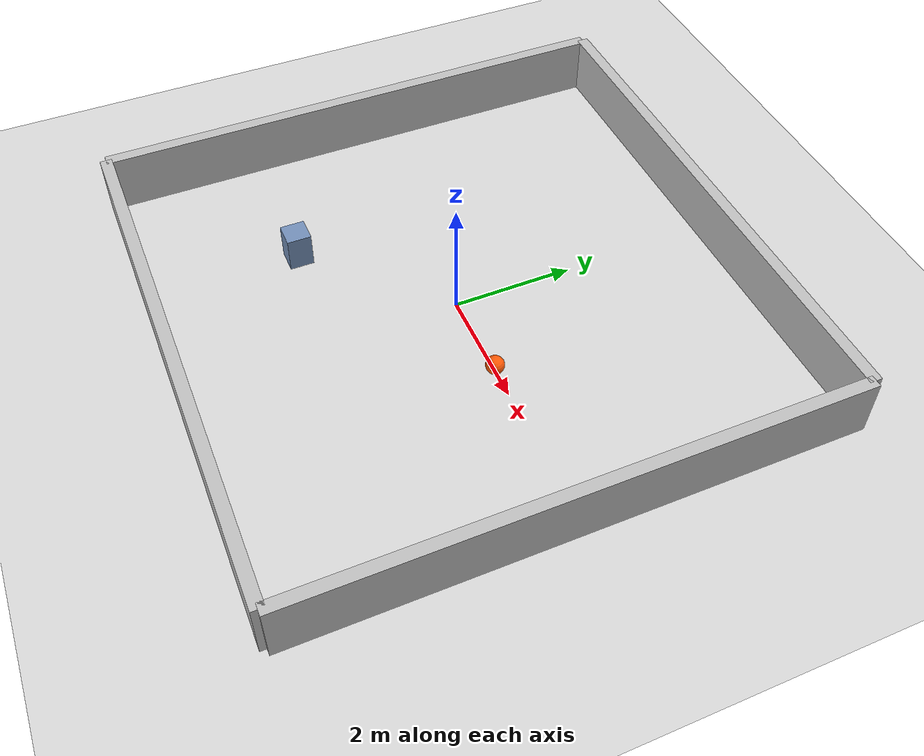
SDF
<?xml version="1.0"?>
<sdf version="1.9">
  <world name="ball_follower_test">
    <gravity>0 0 -9.8</gravity>
    <magnetic_field>6e-06 2.3e-05 -4.2e-05</magnetic_field>
    <atmosphere type="adiabatic"/>

    <plugin filename="gz-sim-physics-system" name="gz::sim::systems::Physics"/>
    <plugin filename="gz-sim-user-commands-system" name="gz::sim::systems::UserCommands"/>
    <plugin filename="gz-sim-scene-broadcaster-system" name="gz::sim::systems::SceneBroadcaster"/>
    <plugin filename="gz-sim-sensors-system" name="gz::sim::systems::Sensors">
      <render_engine>ogre2</render_engine>
    </plugin>

    <light type="directional" name="sun">
      <cast_shadows>true</cast_shadows>
      <pose>0 0 10 0 0 0</pose>
      <diffuse>0.8 0.8 0.8 1</diffuse>
      <specular>0.2 0.2 0.2 1</specular>
      <attenuation>
        <range>1000</range>
        <constant>0.9</constant>
        <linear>0.01</linear>
        <quadratic>0.001</quadratic>
      </attenuation>
      <direction>-0.5 0.1 -0.9</direction>
    </light>

    <!-- Ground plane -->
    <model name="ground_plane">
      <static>true</static>
      <link name="link">
        <collision name="collision">
          <geometry>
            <plane>
              <normal>0 0 1</normal>
              <size>10 10</size>
            </plane>
          </geometry>
        </collision>
        <visual name="visual">
          <geometry>
            <plane>
              <normal>0 0 1</normal>
              <size>10 10</size>
            </plane>
          </geometry>
          <material>
            <ambient>0.85 0.85 0.85 1</ambient>
            <diffuse>0.85 0.85 0.85 1</diffuse>
            <specular>0.1 0.1 0.1 1</specular>
          </material>
        </visual>
      </link>
    </model>

    <!-- Borders to contain the robot -->
    <model name="walls">
      <static>true</static>
      <pose>0 0 0 0 0 0</pose>
      <link name="walls_link">
        <!-- North wall -->
        <collision name="north_wall_collision">
          <pose>0 4.5 0.5 0 0 0</pose>
          <geometry>
            <box>
              <size>9 0.2 1</size>
            </box>
          </geometry>
        </collision>
        <visual name="north_wall_visual">
          <pose>0 4.5 0.5 0 0 0</pose>
          <geometry>
            <box>
              <size>9 0.2 1</size>
            </box>
          </geometry>
          <material>
            <ambient>0.75 0.75 0.75 1</ambient>
            <diffuse>0.75 0.75 0.75 1</diffuse>
          </material>
        </visual>

        <!-- South wall -->
        <collision name="south_wall_collision">
          <pose>0 -4.5 0.5 0 0 0</pose>
          <geometry>
            <box>
              <size>9 0.2 1</size>
            </box>
          </geometry>
        </collision>
        <visual name="south_wall_visual">
          <pose>0 -4.5 0.5 0 0 0</pose>
          <geometry>
            <box>
              <size>9 0.2 1</size>
            </box>
          </geometry>
          <material>
            <ambient>0.75 0.75 0.75 1</ambient>
            <diffuse>0.75 0.75 0.75 1</diffuse>
          </material>
        </visual>

        <!-- East wall -->
        <collision name="east_wall_collision">
          <pose>4.5 0 0.5 0 0 0</pose>
          <geometry>
            <box>
              <size>0.2 9 1</size>
            </box>
          </geometry>
        </collision>
        <visual name="east_wall_visual">
          <pose>4.5 0 0.5 0 0 0</pose>
          <geometry>
            <box>
              <size>0.2 9 1</size>
            </box>
          </geometry>
          <material>
            <ambient>0.75 0.75 0.75 1</ambient>
            <diffuse>0.75 0.75 0.75 1</diffuse>
          </material>
        </visual>

        <!-- West wall -->
        <collision name="west_wall_collision">
          <pose>-4.5 0 0.5 0 0 0</pose>
          <geometry>
            <box>
              <size>0.2 9 1</size>
            </box>
          </geometry>
        </collision>
        <visual name="west_wall_visual">
          <pose>-4.5 0 0.5 0 0 0</pose>
          <geometry>
            <box>
              <size>0.2 9 1</size>
            </box>
          </geometry>
          <material>
            <ambient>0.75 0.75 0.75 1</ambient>
            <diffuse>0.75 0.75 0.75 1</diffuse>
          </material>
        </visual>
      </link>
    </model>

    <!-- Orange ball for the follower to track -->
    <model name="orange_ball">
      <static>false</static>
      <pose>1.5 0 0.15 0 0 0</pose>
      <link name="ball_link">
        <collision name="ball_collision">
          <geometry>
            <sphere>
              <radius>0.15</radius>
            </sphere>
          </geometry>
        </collision>
        <visual name="ball_visual">
          <geometry>
            <sphere>
              <radius>0.15</radius>
            </sphere>
          </geometry>
          <material>
            <ambient>1.0 0.35 0.02 1</ambient>
            <diffuse>1.0 0.35 0.02 1</diffuse>
            <specular>0.2 0.1 0.02 1</specular>
          </material>
        </visual>
      </link>
    </model>

    <!-- Optional: some obstacles for more interesting testing -->
    <model name="obstacle_1">
      <static>true</static>
      <pose>-2.0 -2.0 0.3 0 0 0</pose>
      <link name="obstacle_link">
        <collision name="obstacle_collision">
          <geometry>
            <box>
              <size>0.4 0.4 0.6</size>
            </box>
          </geometry>
        </collision>
        <visual name="obstacle_visual">
          <geometry>
            <box>
              <size>0.4 0.4 0.6</size>
            </box>
          </geometry>
          <material>
            <ambient>0.45 0.56 0.72 1</ambient>
            <diffuse>0.45 0.56 0.72 1</diffuse>
          </material>
        </visual>
      </link>
    </model>

  </world>
</sdf>
